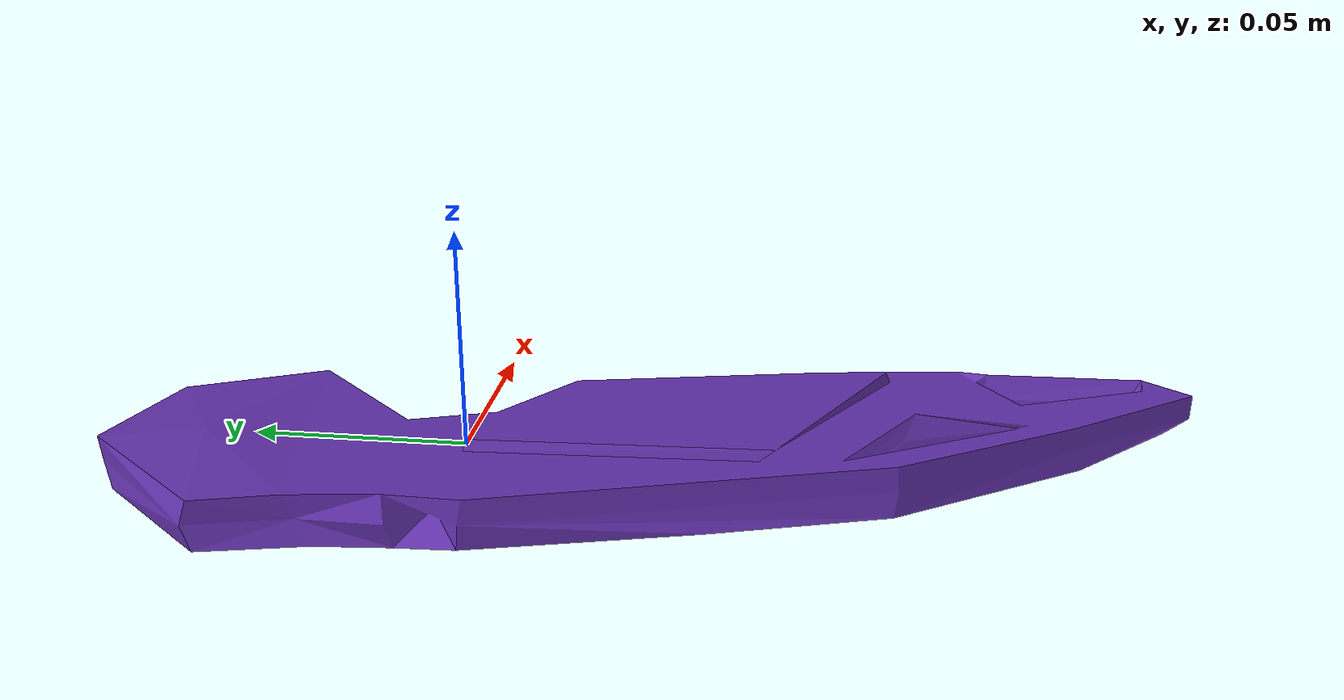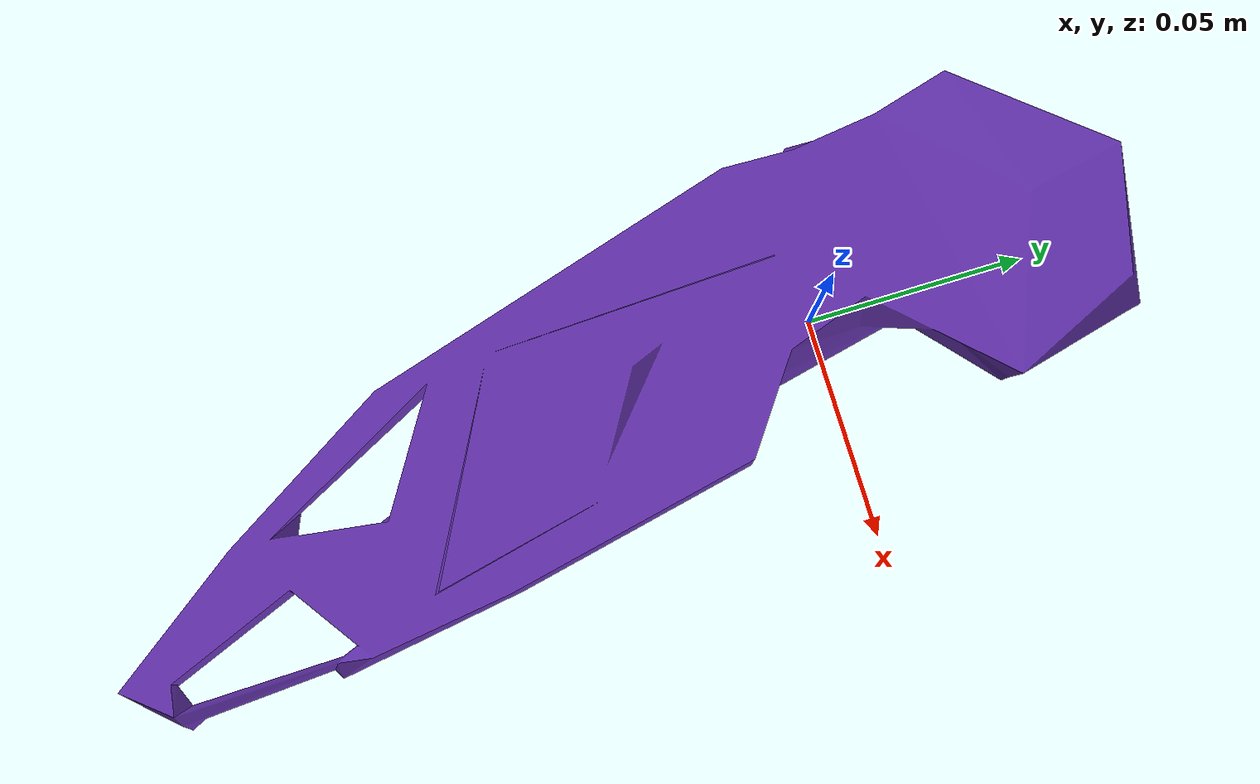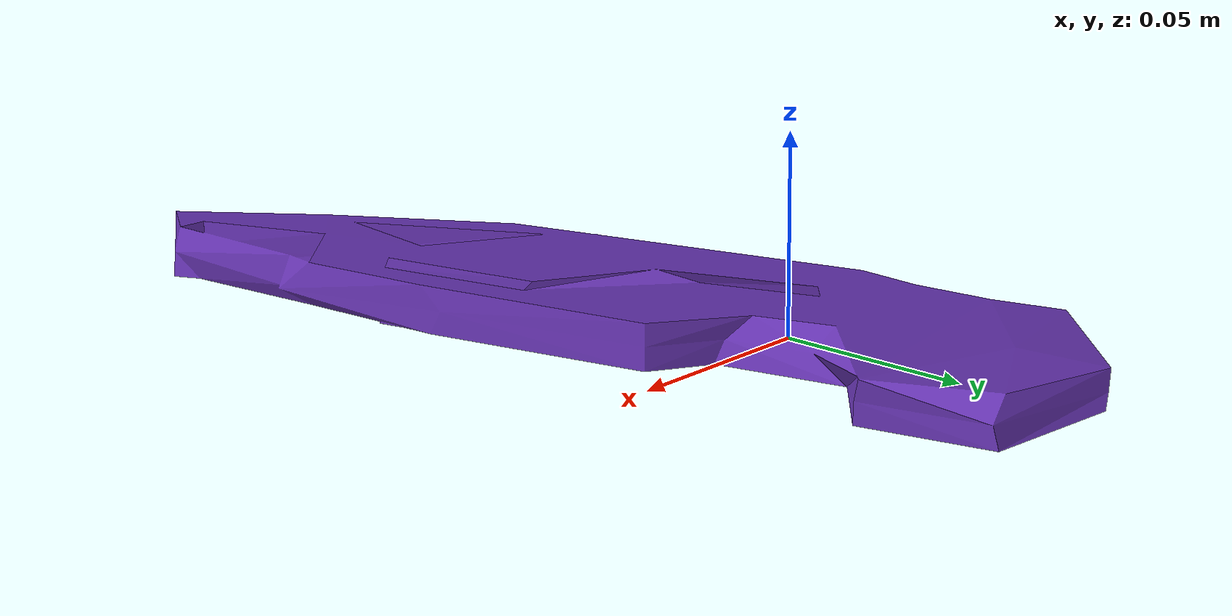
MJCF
<mujoco model="top_watertight_tiny">
  <default>
    <default group="2" type="mesh" contype="0" conaffinity="0">
      <geom group="2" type="mesh" contype="0" conaffinity="0"/>
    </default>
    <default group="3" type="mesh">
      <geom group="3" type="mesh"/>
    </default>
  </default>
  <asset>
    <mesh file="top_watertight_tiny.obj"/>
    <mesh file="top_watertight_tiny_collision_0.obj"/>
    <mesh file="top_watertight_tiny_collision_1.obj"/>
    <mesh file="top_watertight_tiny_collision_2.obj"/>
    <mesh file="top_watertight_tiny_collision_3.obj"/>
    <mesh file="top_watertight_tiny_collision_4.obj"/>
    <mesh file="top_watertight_tiny_collision_5.obj"/>
    <mesh file="top_watertight_tiny_collision_6.obj"/>
    <mesh file="top_watertight_tiny_collision_7.obj"/>
    <mesh file="top_watertight_tiny_collision_8.obj"/>
    <mesh file="top_watertight_tiny_collision_9.obj"/>
    <mesh file="top_watertight_tiny_collision_10.obj"/>
    <mesh file="top_watertight_tiny_collision_11.obj"/>
  </asset>
  <worldbody>
    <body name="top_watertight_tiny">
      <freejoint/>
      <geom mesh="top_watertight_tiny" group="2" type="mesh" rgba="0.4 0.2 0.7 1" contype="0" conaffinity="0"/>
      <geom mesh="top_watertight_tiny_collision_0" rgba="0.8234097624691572 0.6105075634586405 0.22615119288378505 1" group="3" type="mesh"/>
      <geom mesh="top_watertight_tiny_collision_1" rgba="0.38813642522016356 0.781921917586694 0.41510848159001834 1" group="3" type="mesh"/>
      <geom mesh="top_watertight_tiny_collision_2" rgba="0.1937773925639078 0.3342793129272825 0.013782571523388687 1" group="3" type="mesh"/>
      <geom mesh="top_watertight_tiny_collision_3" rgba="0.4528601582606865 0.1330362672678066 0.6296904342736663 1" group="3" type="mesh"/>
      <geom mesh="top_watertight_tiny_collision_4" rgba="0.7986108733291688 0.6503828970661802 0.6635411834404737 1" group="3" type="mesh"/>
      <geom mesh="top_watertight_tiny_collision_5" rgba="0.30890221631577397 0.46324492296179154 0.3441056232135933 1" group="3" type="mesh"/>
      <geom mesh="top_watertight_tiny_collision_6" rgba="0.8820364342973707 0.021538764737347504 0.4204667503102376 1" group="3" type="mesh"/>
      <geom mesh="top_watertight_tiny_collision_7" rgba="0.3055681109493431 0.32138231830698316 0.8375937669521837 1" group="3" type="mesh"/>
      <geom mesh="top_watertight_tiny_collision_8" rgba="0.8481228044873019 0.1303779733239857 0.47502107069231236 1" group="3" type="mesh"/>
      <geom mesh="top_watertight_tiny_collision_9" rgba="0.21785859419222287 0.21888039187933284 0.38744635119611337 1" group="3" type="mesh"/>
      <geom mesh="top_watertight_tiny_collision_10" rgba="0.7584770150245761 0.5097556691433699 0.24230753730630095 1" group="3" type="mesh"/>
      <geom mesh="top_watertight_tiny_collision_11" rgba="0.7636685917419459 0.7570964190135542 0.9009549182542462 1" group="3" type="mesh"/>
    </body>
  </worldbody>
</mujoco>
